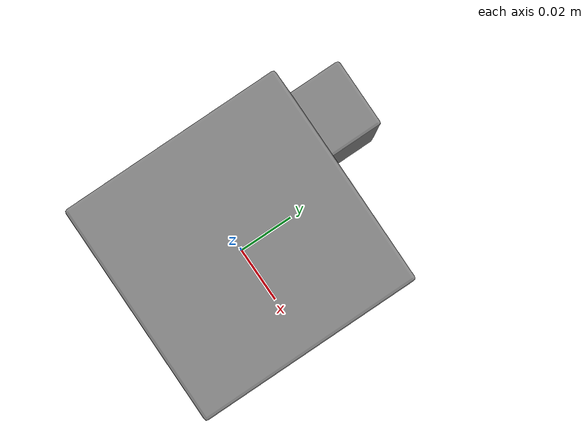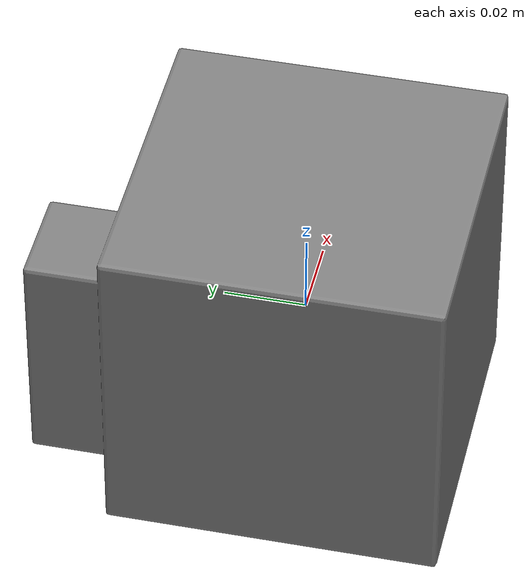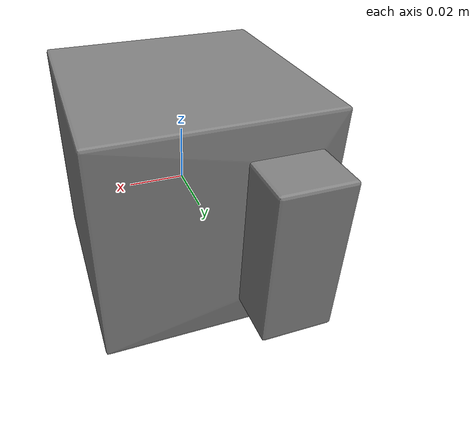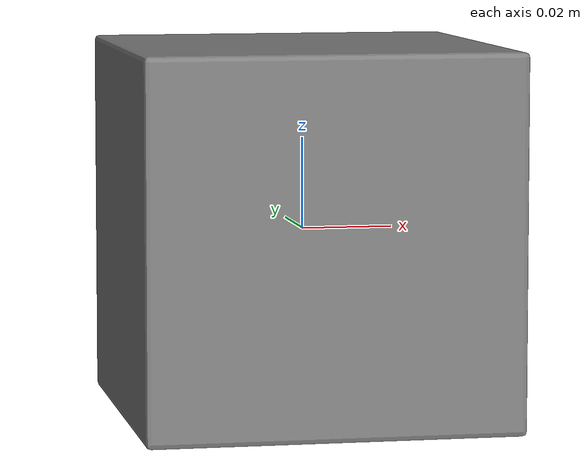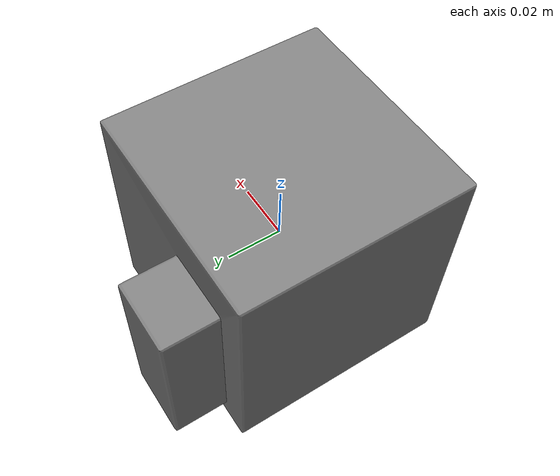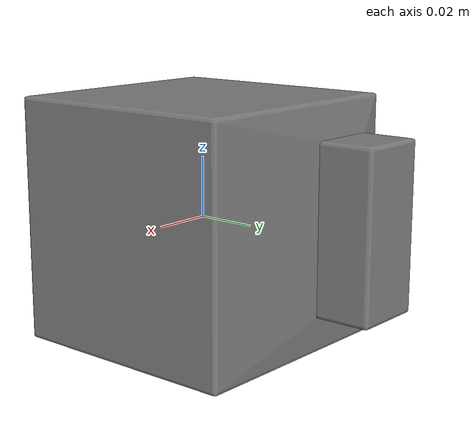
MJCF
<mujoco model="peg-hole">
	<default>
		<default class="visual">
			<geom type="mesh" contype="0" conaffinity="0"/>
		</default>
		<default class="collision">
			<geom type="mesh" rgba="0.5 0.5 0.5 0.0" density="100"/>
		</default>
	</default>
	<asset>
		<mesh name="Lineshiftx_peg_visual" file="new_meshes/Lineshiftx_cube_cap.obj" scale="1.00 1.00 1.00"/>
		<mesh name="Lineshiftx_peg_0" file="new_meshes/collision_meshes/Lineshiftx_cube_cap_decomp_0.obj" scale="1.00 1.00 1.00"/>
		<mesh name="Lineshiftx_peg_1" file="new_meshes/collision_meshes/Lineshiftx_cube_cap_decomp_1.obj" scale="1.00 1.00 1.00"/>
		<mesh name="Lineshiftx_peg_2" file="new_meshes/collision_meshes/Lineshiftx_cube_cap_decomp_2.obj" scale="1.00 1.00 1.00"/>
	</asset>
	<worldbody>
		<body name="Lineshiftx_peg">
			<body name="object">
				<geom name="Lineshiftx_peg_0" class="collision" friction="0.01 0.3 0.0001" mesh="Lineshiftx_peg_0" group="0"/>
				<geom name="Lineshiftx_peg_1" class="collision" friction="0.01 0.3 0.0001" mesh="Lineshiftx_peg_1" group="0"/>
				<geom name="Lineshiftx_peg_2" class="collision" friction="0.01 0.3 0.0001" mesh="Lineshiftx_peg_2" group="0"/>
				<geom name="Lineshiftx_peg_visual" class="visual" mesh="Lineshiftx_peg_visual" group="1"/>
			</body>
			<site rgba="0 0 0 0" size="0.005" pos="0 0 0" name="bottom_site"/>
			<site rgba="0 0 0 0" size="0.005" pos="0 0 0" name="top_site"/>
			<site rgba="0 0 0 0" size="0.005" pos="0 0 0" name="horizontal_radius_site"/>
		</body>
	</worldbody>
</mujoco>
